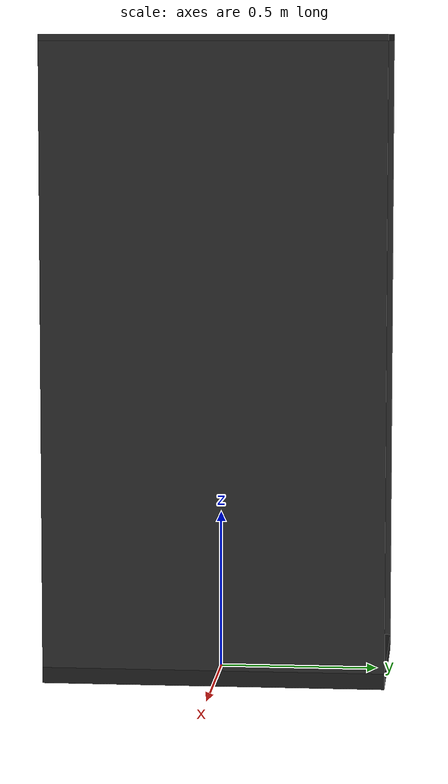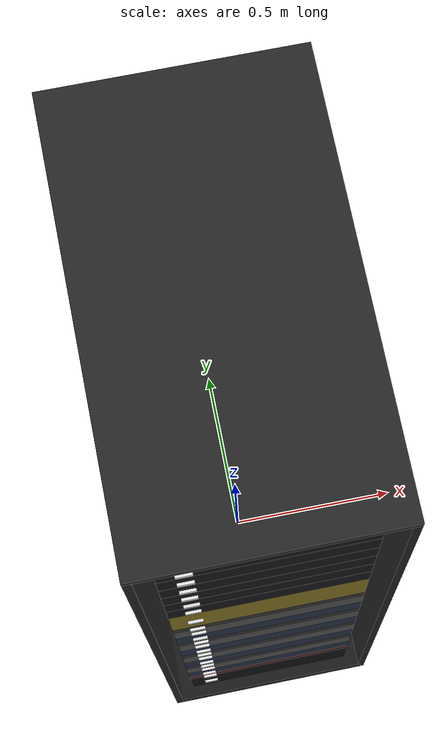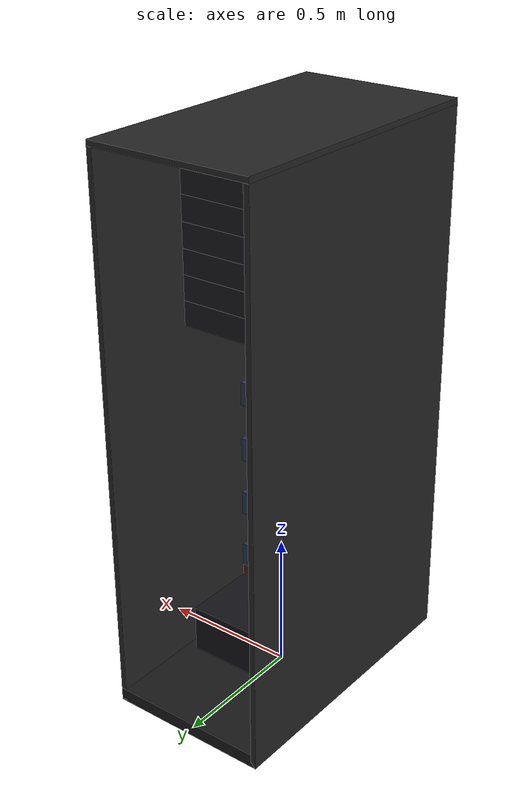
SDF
<?xml version="1.0"?>
<sdf version="1.9">
  <model name="server_rack_5">
    <static>true</static>

    <!-- ===================== FRAME ===================== -->

    <link name="frame_side_left">
      <pose>-0.29 0 1.0 0 0 0</pose>
      <collision name="collision">
        <geometry><box><size>0.02 1.07 2.0</size></box></geometry>
      </collision>
      <visual name="visual">
        <geometry><box><size>0.02 1.07 2.0</size></box></geometry>
        <material>
          <ambient>0.15 0.15 0.15 1</ambient>
          <diffuse>0.15 0.15 0.15 1</diffuse>
        </material>
      </visual>
    </link>

    <link name="frame_side_right">
      <pose>0.29 0 1.0 0 0 0</pose>
      <collision name="collision">
        <geometry><box><size>0.02 1.07 2.0</size></box></geometry>
      </collision>
      <visual name="visual">
        <geometry><box><size>0.02 1.07 2.0</size></box></geometry>
        <material>
          <ambient>0.15 0.15 0.15 1</ambient>
          <diffuse>0.15 0.15 0.15 1</diffuse>
        </material>
      </visual>
    </link>

    <link name="frame_top">
      <pose>0 0 2.01 0 0 0</pose>
      <collision name="collision">
        <geometry><box><size>0.60 1.07 0.02</size></box></geometry>
      </collision>
      <visual name="visual">
        <geometry><box><size>0.60 1.07 0.02</size></box></geometry>
        <material>
          <ambient>0.15 0.15 0.15 1</ambient>
          <diffuse>0.15 0.15 0.15 1</diffuse>
        </material>
      </visual>
    </link>

    <link name="frame_plinth">
      <pose>0 0 0.025 0 0 0</pose>
      <collision name="collision">
        <geometry><box><size>0.60 1.07 0.05</size></box></geometry>
      </collision>
      <visual name="visual">
        <geometry><box><size>0.60 1.07 0.05</size></box></geometry>
        <material>
          <ambient>0.10 0.10 0.10 1</ambient>
          <diffuse>0.10 0.10 0.10 1</diffuse>
        </material>
      </visual>
    </link>

    <!-- ===================== EQUIPMENT ===================== -->

    <!-- 4RU UPS, U1-U4 -->
    <link name="ups">
      <pose>0 -0.15 0.1389 0 0 0</pose>
      <collision name="collision">
        <geometry><box><size>0.483 0.70 0.1778</size></box></geometry>
      </collision>
      <visual name="visual">
        <geometry><box><size>0.483 0.70 0.1778</size></box></geometry>
        <material>
          <ambient>0.08 0.08 0.10 1</ambient>
          <diffuse>0.08 0.08 0.10 1</diffuse>
        </material>
      </visual>
    </link>

    <!-- 1RU PDU, U5 -->
    <link name="pdu">
      <pose>0 -0.29 0.2500 0 0 0</pose>
      <collision name="collision">
        <geometry><box><size>0.483 0.42 0.0444</size></box></geometry>
      </collision>
      <visual name="visual">
        <geometry><box><size>0.483 0.42 0.0444</size></box></geometry>
        <material>
          <ambient>0.30 0.10 0.10 1</ambient>
          <diffuse>0.30 0.10 0.10 1</diffuse>
        </material>
      </visual>
    </link>

    <!-- 2RU network switch 1, U6-U7 -->
    <link name="switch_1">
      <pose>0 -0.29 0.3167 0 0 0</pose>
      <collision name="collision">
        <geometry><box><size>0.483 0.42 0.0889</size></box></geometry>
      </collision>
      <visual name="visual">
        <geometry><box><size>0.483 0.42 0.0889</size></box></geometry>
        <material>
          <ambient>0.16 0.20 0.30 1</ambient>
          <diffuse>0.16 0.20 0.30 1</diffuse>
        </material>
      </visual>
    </link>

    <!-- 2RU patch panel 1, U8-U9 -->
    <link name="patch_panel_1">
      <pose>0 -0.425 0.4056 0 0 0</pose>
      <collision name="collision">
        <geometry><box><size>0.483 0.15 0.0889</size></box></geometry>
      </collision>
      <visual name="visual">
        <geometry><box><size>0.483 0.15 0.0889</size></box></geometry>
        <material>
          <ambient>0.35 0.35 0.35 1</ambient>
          <diffuse>0.35 0.35 0.35 1</diffuse>
        </material>
      </visual>
    </link>

    <!-- 1RU cable manager 1, U10 -->
    <link name="cable_manager_1">
      <pose>0 -0.425 0.4723 0 0 0</pose>
      <collision name="collision">
        <geometry><box><size>0.483 0.15 0.0444</size></box></geometry>
      </collision>
      <visual name="visual">
        <geometry><box><size>0.483 0.15 0.0444</size></box></geometry>
        <material>
          <ambient>0.22 0.22 0.22 1</ambient>
          <diffuse>0.22 0.22 0.22 1</diffuse>
        </material>
      </visual>
    </link>

    <!-- 2RU network switch 2, U11-U12 -->
    <link name="switch_2">
      <pose>0 -0.29 0.5390 0 0 0</pose>
      <collision name="collision">
        <geometry><box><size>0.483 0.42 0.0889</size></box></geometry>
      </collision>
      <visual name="visual">
        <geometry><box><size>0.483 0.42 0.0889</size></box></geometry>
        <material>
          <ambient>0.16 0.20 0.30 1</ambient>
          <diffuse>0.16 0.20 0.30 1</diffuse>
        </material>
      </visual>
    </link>

    <!-- 2RU patch panel 2, U13-U14 -->
    <link name="patch_panel_2">
      <pose>0 -0.425 0.6279 0 0 0</pose>
      <collision name="collision">
        <geometry><box><size>0.483 0.15 0.0889</size></box></geometry>
      </collision>
      <visual name="visual">
        <geometry><box><size>0.483 0.15 0.0889</size></box></geometry>
        <material>
          <ambient>0.35 0.35 0.35 1</ambient>
          <diffuse>0.35 0.35 0.35 1</diffuse>
        </material>
      </visual>
    </link>

    <!-- 1RU cable manager 2, U15 -->
    <link name="cable_manager_2">
      <pose>0 -0.425 0.6945 0 0 0</pose>
      <collision name="collision">
        <geometry><box><size>0.483 0.15 0.0444</size></box></geometry>
      </collision>
      <visual name="visual">
        <geometry><box><size>0.483 0.15 0.0444</size></box></geometry>
        <material>
          <ambient>0.22 0.22 0.22 1</ambient>
          <diffuse>0.22 0.22 0.22 1</diffuse>
        </material>
      </visual>
    </link>

    <!-- 2RU network switch 3, U16-U17 -->
    <link name="switch_3">
      <pose>0 -0.29 0.7612 0 0 0</pose>
      <collision name="collision">
        <geometry><box><size>0.483 0.42 0.0889</size></box></geometry>
      </collision>
      <visual name="visual">
        <geometry><box><size>0.483 0.42 0.0889</size></box></geometry>
        <material>
          <ambient>0.16 0.20 0.30 1</ambient>
          <diffuse>0.16 0.20 0.30 1</diffuse>
        </material>
      </visual>
    </link>

    <!-- 2RU patch panel 3, U18-U19 -->
    <link name="patch_panel_3">
      <pose>0 -0.425 0.8501 0 0 0</pose>
      <collision name="collision">
        <geometry><box><size>0.483 0.15 0.0889</size></box></geometry>
      </collision>
      <visual name="visual">
        <geometry><box><size>0.483 0.15 0.0889</size></box></geometry>
        <material>
          <ambient>0.35 0.35 0.35 1</ambient>
          <diffuse>0.35 0.35 0.35 1</diffuse>
        </material>
      </visual>
    </link>

    <!-- 1RU cable manager 3, U20 -->
    <link name="cable_manager_3">
      <pose>0 -0.425 0.9168 0 0 0</pose>
      <collision name="collision">
        <geometry><box><size>0.483 0.15 0.0444</size></box></geometry>
      </collision>
      <visual name="visual">
        <geometry><box><size>0.483 0.15 0.0444</size></box></geometry>
        <material>
          <ambient>0.22 0.22 0.22 1</ambient>
          <diffuse>0.22 0.22 0.22 1</diffuse>
        </material>
      </visual>
    </link>

    <!-- 2RU network switch 4, U21-U22 -->
    <link name="switch_4">
      <pose>0 -0.29 0.9835 0 0 0</pose>
      <collision name="collision">
        <geometry><box><size>0.483 0.42 0.0889</size></box></geometry>
      </collision>
      <visual name="visual">
        <geometry><box><size>0.483 0.42 0.0889</size></box></geometry>
        <material>
          <ambient>0.16 0.20 0.30 1</ambient>
          <diffuse>0.16 0.20 0.30 1</diffuse>
        </material>
      </visual>
    </link>

    <!-- 2RU patch panel 4, U23-U24 -->
    <link name="patch_panel_4">
      <pose>0 -0.425 1.0724 0 0 0</pose>
      <collision name="collision">
        <geometry><box><size>0.483 0.15 0.0889</size></box></geometry>
      </collision>
      <visual name="visual">
        <geometry><box><size>0.483 0.15 0.0889</size></box></geometry>
        <material>
          <ambient>0.35 0.35 0.35 1</ambient>
          <diffuse>0.35 0.35 0.35 1</diffuse>
        </material>
      </visual>
    </link>

    <!-- 1RU cable manager 4, U25 -->
    <link name="cable_manager_4">
      <pose>0 -0.425 1.1390 0 0 0</pose>
      <collision name="collision">
        <geometry><box><size>0.483 0.15 0.0444</size></box></geometry>
      </collision>
      <visual name="visual">
        <geometry><box><size>0.483 0.15 0.0444</size></box></geometry>
        <material>
          <ambient>0.22 0.22 0.22 1</ambient>
          <diffuse>0.22 0.22 0.22 1</diffuse>
        </material>
      </visual>
    </link>

    <!-- 4RU fiber patch panel, U26-U29 -->
    <link name="fiber_patch_panel">
      <pose>0 -0.35 1.2502 0 0 0</pose>
      <collision name="collision">
        <geometry><box><size>0.483 0.30 0.1778</size></box></geometry>
      </collision>
      <visual name="visual">
        <geometry><box><size>0.483 0.30 0.1778</size></box></geometry>
        <material>
          <ambient>0.55 0.48 0.15 1</ambient>
          <diffuse>0.55 0.48 0.15 1</diffuse>
        </material>
      </visual>
    </link>

    <!-- 2RU server 1, U30-U31 -->
    <link name="server_1">
      <pose>0 -0.15 1.3835 0 0 0</pose>
      <collision name="collision">
        <geometry><box><size>0.483 0.70 0.0889</size></box></geometry>
      </collision>
      <visual name="visual">
        <geometry><box><size>0.483 0.70 0.0889</size></box></geometry>
        <material>
          <ambient>0.10 0.10 0.12 1</ambient>
          <diffuse>0.10 0.10 0.12 1</diffuse>
        </material>
      </visual>
    </link>

    <!-- 2RU server 2, U32-U33 -->
    <link name="server_2">
      <pose>0 -0.15 1.4724 0 0 0</pose>
      <collision name="collision">
        <geometry><box><size>0.483 0.70 0.0889</size></box></geometry>
      </collision>
      <visual name="visual">
        <geometry><box><size>0.483 0.70 0.0889</size></box></geometry>
        <material>
          <ambient>0.10 0.10 0.12 1</ambient>
          <diffuse>0.10 0.10 0.12 1</diffuse>
        </material>
      </visual>
    </link>

    <!-- 2RU server 3, U34-U35 -->
    <link name="server_3">
      <pose>0 -0.15 1.5613 0 0 0</pose>
      <collision name="collision">
        <geometry><box><size>0.483 0.70 0.0889</size></box></geometry>
      </collision>
      <visual name="visual">
        <geometry><box><size>0.483 0.70 0.0889</size></box></geometry>
        <material>
          <ambient>0.10 0.10 0.12 1</ambient>
          <diffuse>0.10 0.10 0.12 1</diffuse>
        </material>
      </visual>
    </link>

    <!-- 2RU server 4, U36-U37 -->
    <link name="server_4">
      <pose>0 -0.15 1.6502 0 0 0</pose>
      <collision name="collision">
        <geometry><box><size>0.483 0.70 0.0889</size></box></geometry>
      </collision>
      <visual name="visual">
        <geometry><box><size>0.483 0.70 0.0889</size></box></geometry>
        <material>
          <ambient>0.10 0.10 0.12 1</ambient>
          <diffuse>0.10 0.10 0.12 1</diffuse>
        </material>
      </visual>
    </link>

    <!-- 2RU server 5, U38-U39 -->
    <link name="server_5">
      <pose>0 -0.15 1.7391 0 0 0</pose>
      <collision name="collision">
        <geometry><box><size>0.483 0.70 0.0889</size></box></geometry>
      </collision>
      <visual name="visual">
        <geometry><box><size>0.483 0.70 0.0889</size></box></geometry>
        <material>
          <ambient>0.10 0.10 0.12 1</ambient>
          <diffuse>0.10 0.10 0.12 1</diffuse>
        </material>
      </visual>
    </link>

    <!-- 2RU server 6, U40-U41 -->
    <link name="server_6">
      <pose>0 -0.15 1.8280 0 0 0</pose>
      <collision name="collision">
        <geometry><box><size>0.483 0.70 0.0889</size></box></geometry>
      </collision>
      <visual name="visual">
        <geometry><box><size>0.483 0.70 0.0889</size></box></geometry>
        <material>
          <ambient>0.10 0.10 0.12 1</ambient>
          <diffuse>0.10 0.10 0.12 1</diffuse>
        </material>
      </visual>
    </link>

    <!-- 1RU KVM console, U42 -->
    <link name="kvm">
      <pose>0 -0.29 1.8947 0 0 0</pose>
      <collision name="collision">
        <geometry><box><size>0.483 0.42 0.0444</size></box></geometry>
      </collision>
      <visual name="visual">
        <geometry><box><size>0.483 0.42 0.0444</size></box></geometry>
        <material>
          <ambient>0.12 0.25 0.18 1</ambient>
          <diffuse>0.12 0.25 0.18 1</diffuse>
        </material>
      </visual>
    </link>

    <!-- ===================== RFID TAGS =====================
         Local y = -0.503: 3 mm proud of the rack front plane (y = -0.50).
         Local z equals the tagged equipment's local z. -->

    <!-- ups, U1-4 -->
    <model name="barcode_label_031FB45">
      <static>true</static>
      <pose>-0.18 -0.5042 0.1389 0 0 0</pose>
      <link name="label_link">
        <visual name="substrate">
          <geometry><box><size>0.03810 0.00635 0.01270</size></box></geometry>
          <material>
            <ambient>0.9 0.9 0.9 1</ambient>
            <diffuse>0.9 0.9 0.9 1</diffuse>
          </material>
        </visual>
        <visual name="print">
          <pose>0 -0.00327 0 1.5708 0 0</pose>
          <geometry><box><size>0.03810 0.01270 0.0002</size></box></geometry>
          <material>
            <ambient>1 1 1 1</ambient>
            <diffuse>1 1 1 1</diffuse>
            <pbr><metal>
              <albedo_map>model://barcode_labels/materials/textures/031FB45.png</albedo_map>
              <metalness>0.0</metalness>
              <roughness>1.0</roughness>
            </metal></pbr>
          </material>
        </visual>
      </link>
    </model>

    <!-- pdu, U5-5 -->
    <model name="barcode_label_031FB46">
      <static>true</static>
      <pose>-0.18 -0.5042 0.2500 0 0 0</pose>
      <link name="label_link">
        <visual name="substrate">
          <geometry><box><size>0.03810 0.00635 0.01270</size></box></geometry>
          <material>
            <ambient>0.9 0.9 0.9 1</ambient>
            <diffuse>0.9 0.9 0.9 1</diffuse>
          </material>
        </visual>
        <visual name="print">
          <pose>0 -0.00327 0 1.5708 0 0</pose>
          <geometry><box><size>0.03810 0.01270 0.0002</size></box></geometry>
          <material>
            <ambient>1 1 1 1</ambient>
            <diffuse>1 1 1 1</diffuse>
            <pbr><metal>
              <albedo_map>model://barcode_labels/materials/textures/031FB46.png</albedo_map>
              <metalness>0.0</metalness>
              <roughness>1.0</roughness>
            </metal></pbr>
          </material>
        </visual>
      </link>
    </model>

    <!-- switch, U6-7 -->
    <model name="barcode_label_031FB47">
      <static>true</static>
      <pose>-0.18 -0.5042 0.3167 0 0 0</pose>
      <link name="label_link">
        <visual name="substrate">
          <geometry><box><size>0.03810 0.00635 0.01270</size></box></geometry>
          <material>
            <ambient>0.9 0.9 0.9 1</ambient>
            <diffuse>0.9 0.9 0.9 1</diffuse>
          </material>
        </visual>
        <visual name="print">
          <pose>0 -0.00327 0 1.5708 0 0</pose>
          <geometry><box><size>0.03810 0.01270 0.0002</size></box></geometry>
          <material>
            <ambient>1 1 1 1</ambient>
            <diffuse>1 1 1 1</diffuse>
            <pbr><metal>
              <albedo_map>model://barcode_labels/materials/textures/031FB47.png</albedo_map>
              <metalness>0.0</metalness>
              <roughness>1.0</roughness>
            </metal></pbr>
          </material>
        </visual>
      </link>
    </model>

    <!-- patch_panel, U8-9 -->
    <model name="barcode_label_031FB48">
      <static>true</static>
      <pose>-0.18 -0.5042 0.4056 0 0 0</pose>
      <link name="label_link">
        <visual name="substrate">
          <geometry><box><size>0.03810 0.00635 0.01270</size></box></geometry>
          <material>
            <ambient>0.9 0.9 0.9 1</ambient>
            <diffuse>0.9 0.9 0.9 1</diffuse>
          </material>
        </visual>
        <visual name="print">
          <pose>0 -0.00327 0 1.5708 0 0</pose>
          <geometry><box><size>0.03810 0.01270 0.0002</size></box></geometry>
          <material>
            <ambient>1 1 1 1</ambient>
            <diffuse>1 1 1 1</diffuse>
            <pbr><metal>
              <albedo_map>model://barcode_labels/materials/textures/031FB48.png</albedo_map>
              <metalness>0.0</metalness>
              <roughness>1.0</roughness>
            </metal></pbr>
          </material>
        </visual>
      </link>
    </model>

    <!-- cable_manager, U10-10 -->
    <model name="barcode_label_031FB49">
      <static>true</static>
      <pose>-0.18 -0.5042 0.4723 0 0 0</pose>
      <link name="label_link">
        <visual name="substrate">
          <geometry><box><size>0.03810 0.00635 0.01270</size></box></geometry>
          <material>
            <ambient>0.9 0.9 0.9 1</ambient>
            <diffuse>0.9 0.9 0.9 1</diffuse>
          </material>
        </visual>
        <visual name="print">
          <pose>0 -0.00327 0 1.5708 0 0</pose>
          <geometry><box><size>0.03810 0.01270 0.0002</size></box></geometry>
          <material>
            <ambient>1 1 1 1</ambient>
            <diffuse>1 1 1 1</diffuse>
            <pbr><metal>
              <albedo_map>model://barcode_labels/materials/textures/031FB49.png</albedo_map>
              <metalness>0.0</metalness>
              <roughness>1.0</roughness>
            </metal></pbr>
          </material>
        </visual>
      </link>
    </model>

    <!-- switch, U11-12 -->
    <model name="barcode_label_031FB4A">
      <static>true</static>
      <pose>-0.18 -0.5042 0.5390 0 0 0</pose>
      <link name="label_link">
        <visual name="substrate">
          <geometry><box><size>0.03810 0.00635 0.01270</size></box></geometry>
          <material>
            <ambient>0.9 0.9 0.9 1</ambient>
            <diffuse>0.9 0.9 0.9 1</diffuse>
          </material>
        </visual>
        <visual name="print">
          <pose>0 -0.00327 0 1.5708 0 0</pose>
          <geometry><box><size>0.03810 0.01270 0.0002</size></box></geometry>
          <material>
            <ambient>1 1 1 1</ambient>
            <diffuse>1 1 1 1</diffuse>
            <pbr><metal>
              <albedo_map>model://barcode_labels/materials/textures/031FB4A.png</albedo_map>
              <metalness>0.0</metalness>
              <roughness>1.0</roughness>
            </metal></pbr>
          </material>
        </visual>
      </link>
    </model>

    <!-- patch_panel, U13-14 -->
    <model name="barcode_label_031FB4B">
      <static>true</static>
      <pose>-0.18 -0.5042 0.6279 0 0 0</pose>
      <link name="label_link">
        <visual name="substrate">
          <geometry><box><size>0.03810 0.00635 0.01270</size></box></geometry>
          <material>
            <ambient>0.9 0.9 0.9 1</ambient>
            <diffuse>0.9 0.9 0.9 1</diffuse>
          </material>
        </visual>
        <visual name="print">
          <pose>0 -0.00327 0 1.5708 0 0</pose>
          <geometry><box><size>0.03810 0.01270 0.0002</size></box></geometry>
          <material>
            <ambient>1 1 1 1</ambient>
            <diffuse>1 1 1 1</diffuse>
            <pbr><metal>
              <albedo_map>model://barcode_labels/materials/textures/031FB4B.png</albedo_map>
              <metalness>0.0</metalness>
              <roughness>1.0</roughness>
            </metal></pbr>
          </material>
        </visual>
      </link>
    </model>

    <!-- cable_manager, U15-15 -->
    <model name="barcode_label_031FB4C">
      <static>true</static>
      <pose>-0.18 -0.5042 0.6945 0 0 0</pose>
      <link name="label_link">
        <visual name="substrate">
          <geometry><box><size>0.03810 0.00635 0.01270</size></box></geometry>
          <material>
            <ambient>0.9 0.9 0.9 1</ambient>
            <diffuse>0.9 0.9 0.9 1</diffuse>
          </material>
        </visual>
        <visual name="print">
          <pose>0 -0.00327 0 1.5708 0 0</pose>
          <geometry><box><size>0.03810 0.01270 0.0002</size></box></geometry>
          <material>
            <ambient>1 1 1 1</ambient>
            <diffuse>1 1 1 1</diffuse>
            <pbr><metal>
              <albedo_map>model://barcode_labels/materials/textures/031FB4C.png</albedo_map>
              <metalness>0.0</metalness>
              <roughness>1.0</roughness>
            </metal></pbr>
          </material>
        </visual>
      </link>
    </model>

    <!-- switch, U16-17 -->
    <model name="barcode_label_031FB4D">
      <static>true</static>
      <pose>-0.18 -0.5042 0.7612 0 0 0</pose>
      <link name="label_link">
        <visual name="substrate">
          <geometry><box><size>0.03810 0.00635 0.01270</size></box></geometry>
          <material>
            <ambient>0.9 0.9 0.9 1</ambient>
            <diffuse>0.9 0.9 0.9 1</diffuse>
          </material>
        </visual>
        <visual name="print">
          <pose>0 -0.00327 0 1.5708 0 0</pose>
          <geometry><box><size>0.03810 0.01270 0.0002</size></box></geometry>
          <material>
            <ambient>1 1 1 1</ambient>
            <diffuse>1 1 1 1</diffuse>
            <pbr><metal>
              <albedo_map>model://barcode_labels/materials/textures/031FB4D.png</albedo_map>
              <metalness>0.0</metalness>
              <roughness>1.0</roughness>
            </metal></pbr>
          </material>
        </visual>
      </link>
    </model>

    <!-- patch_panel, U18-19 -->
    <model name="barcode_label_031FB4E">
      <static>true</static>
      <pose>-0.18 -0.5042 0.8501 0 0 0</pose>
      <link name="label_link">
        <visual name="substrate">
          <geometry><box><size>0.03810 0.00635 0.01270</size></box></geometry>
          <material>
            <ambient>0.9 0.9 0.9 1</ambient>
            <diffuse>0.9 0.9 0.9 1</diffuse>
          </material>
        </visual>
        <visual name="print">
          <pose>0 -0.00327 0 1.5708 0 0</pose>
          <geometry><box><size>0.03810 0.01270 0.0002</size></box></geometry>
          <material>
            <ambient>1 1 1 1</ambient>
            <diffuse>1 1 1 1</diffuse>
            <pbr><metal>
              <albedo_map>model://barcode_labels/materials/textures/031FB4E.png</albedo_map>
              <metalness>0.0</metalness>
              <roughness>1.0</roughness>
            </metal></pbr>
          </material>
        </visual>
      </link>
    </model>

    <!-- cable_manager, U20-20 -->
    <model name="barcode_label_031FB4F">
      <static>true</static>
      <pose>-0.18 -0.5042 0.9168 0 0 0</pose>
      <link name="label_link">
        <visual name="substrate">
          <geometry><box><size>0.03810 0.00635 0.01270</size></box></geometry>
          <material>
            <ambient>0.9 0.9 0.9 1</ambient>
            <diffuse>0.9 0.9 0.9 1</diffuse>
          </material>
        </visual>
        <visual name="print">
          <pose>0 -0.00327 0 1.5708 0 0</pose>
          <geometry><box><size>0.03810 0.01270 0.0002</size></box></geometry>
          <material>
            <ambient>1 1 1 1</ambient>
            <diffuse>1 1 1 1</diffuse>
            <pbr><metal>
              <albedo_map>model://barcode_labels/materials/textures/031FB4F.png</albedo_map>
              <metalness>0.0</metalness>
              <roughness>1.0</roughness>
            </metal></pbr>
          </material>
        </visual>
      </link>
    </model>

    <!-- switch, U21-22 -->
    <model name="barcode_label_031FB50">
      <static>true</static>
      <pose>-0.18 -0.5042 0.9835 0 0 0</pose>
      <link name="label_link">
        <visual name="substrate">
          <geometry><box><size>0.03810 0.00635 0.01270</size></box></geometry>
          <material>
            <ambient>0.9 0.9 0.9 1</ambient>
            <diffuse>0.9 0.9 0.9 1</diffuse>
          </material>
        </visual>
        <visual name="print">
          <pose>0 -0.00327 0 1.5708 0 0</pose>
          <geometry><box><size>0.03810 0.01270 0.0002</size></box></geometry>
          <material>
            <ambient>1 1 1 1</ambient>
            <diffuse>1 1 1 1</diffuse>
            <pbr><metal>
              <albedo_map>model://barcode_labels/materials/textures/031FB50.png</albedo_map>
              <metalness>0.0</metalness>
              <roughness>1.0</roughness>
            </metal></pbr>
          </material>
        </visual>
      </link>
    </model>

    <!-- patch_panel, U23-24 -->
    <model name="barcode_label_031FB51">
      <static>true</static>
      <pose>-0.18 -0.5042 1.0724 0 0 0</pose>
      <link name="label_link">
        <visual name="substrate">
          <geometry><box><size>0.03810 0.00635 0.01270</size></box></geometry>
          <material>
            <ambient>0.9 0.9 0.9 1</ambient>
            <diffuse>0.9 0.9 0.9 1</diffuse>
          </material>
        </visual>
        <visual name="print">
          <pose>0 -0.00327 0 1.5708 0 0</pose>
          <geometry><box><size>0.03810 0.01270 0.0002</size></box></geometry>
          <material>
            <ambient>1 1 1 1</ambient>
            <diffuse>1 1 1 1</diffuse>
            <pbr><metal>
              <albedo_map>model://barcode_labels/materials/textures/031FB51.png</albedo_map>
              <metalness>0.0</metalness>
              <roughness>1.0</roughness>
            </metal></pbr>
          </material>
        </visual>
      </link>
    </model>

    <!-- cable_manager, U25-25 -->
    <model name="barcode_label_031FB52">
      <static>true</static>
      <pose>-0.18 -0.5042 1.1390 0 0 0</pose>
      <link name="label_link">
        <visual name="substrate">
          <geometry><box><size>0.03810 0.00635 0.01270</size></box></geometry>
          <material>
            <ambient>0.9 0.9 0.9 1</ambient>
            <diffuse>0.9 0.9 0.9 1</diffuse>
          </material>
        </visual>
        <visual name="print">
          <pose>0 -0.00327 0 1.5708 0 0</pose>
          <geometry><box><size>0.03810 0.01270 0.0002</size></box></geometry>
          <material>
            <ambient>1 1 1 1</ambient>
            <diffuse>1 1 1 1</diffuse>
            <pbr><metal>
              <albedo_map>model://barcode_labels/materials/textures/031FB52.png</albedo_map>
              <metalness>0.0</metalness>
              <roughness>1.0</roughness>
            </metal></pbr>
          </material>
        </visual>
      </link>
    </model>

    <!-- fiber_patch_panel, U26-29 -->
    <model name="barcode_label_031FB53">
      <static>true</static>
      <pose>-0.18 -0.5042 1.2502 0 0 0</pose>
      <link name="label_link">
        <visual name="substrate">
          <geometry><box><size>0.03810 0.00635 0.01270</size></box></geometry>
          <material>
            <ambient>0.9 0.9 0.9 1</ambient>
            <diffuse>0.9 0.9 0.9 1</diffuse>
          </material>
        </visual>
        <visual name="print">
          <pose>0 -0.00327 0 1.5708 0 0</pose>
          <geometry><box><size>0.03810 0.01270 0.0002</size></box></geometry>
          <material>
            <ambient>1 1 1 1</ambient>
            <diffuse>1 1 1 1</diffuse>
            <pbr><metal>
              <albedo_map>model://barcode_labels/materials/textures/031FB53.png</albedo_map>
              <metalness>0.0</metalness>
              <roughness>1.0</roughness>
            </metal></pbr>
          </material>
        </visual>
      </link>
    </model>

    <!-- server, U30-31 -->
    <model name="barcode_label_031FB54">
      <static>true</static>
      <pose>-0.18 -0.5042 1.3835 0 0 0</pose>
      <link name="label_link">
        <visual name="substrate">
          <geometry><box><size>0.03810 0.00635 0.01270</size></box></geometry>
          <material>
            <ambient>0.9 0.9 0.9 1</ambient>
            <diffuse>0.9 0.9 0.9 1</diffuse>
          </material>
        </visual>
        <visual name="print">
          <pose>0 -0.00327 0 1.5708 0 0</pose>
          <geometry><box><size>0.03810 0.01270 0.0002</size></box></geometry>
          <material>
            <ambient>1 1 1 1</ambient>
            <diffuse>1 1 1 1</diffuse>
            <pbr><metal>
              <albedo_map>model://barcode_labels/materials/textures/031FB54.png</albedo_map>
              <metalness>0.0</metalness>
              <roughness>1.0</roughness>
            </metal></pbr>
          </material>
        </visual>
      </link>
    </model>

    <!-- server, U32-33 -->
    <model name="barcode_label_031FB55">
      <static>true</static>
      <pose>-0.18 -0.5042 1.4724 0 0 0</pose>
      <link name="label_link">
        <visual name="substrate">
          <geometry><box><size>0.03810 0.00635 0.01270</size></box></geometry>
          <material>
            <ambient>0.9 0.9 0.9 1</ambient>
            <diffuse>0.9 0.9 0.9 1</diffuse>
          </material>
        </visual>
        <visual name="print">
          <pose>0 -0.00327 0 1.5708 0 0</pose>
          <geometry><box><size>0.03810 0.01270 0.0002</size></box></geometry>
          <material>
            <ambient>1 1 1 1</ambient>
            <diffuse>1 1 1 1</diffuse>
            <pbr><metal>
              <albedo_map>model://barcode_labels/materials/textures/031FB55.png</albedo_map>
              <metalness>0.0</metalness>
              <roughness>1.0</roughness>
            </metal></pbr>
          </material>
        </visual>
      </link>
    </model>

    <!-- server, U34-35 -->
    <model name="barcode_label_031FB56">
      <static>true</static>
      <pose>-0.18 -0.5042 1.5613 0 0 0</pose>
      <link name="label_link">
        <visual name="substrate">
          <geometry><box><size>0.03810 0.00635 0.01270</size></box></geometry>
          <material>
            <ambient>0.9 0.9 0.9 1</ambient>
            <diffuse>0.9 0.9 0.9 1</diffuse>
          </material>
        </visual>
        <visual name="print">
          <pose>0 -0.00327 0 1.5708 0 0</pose>
          <geometry><box><size>0.03810 0.01270 0.0002</size></box></geometry>
          <material>
            <ambient>1 1 1 1</ambient>
            <diffuse>1 1 1 1</diffuse>
            <pbr><metal>
              <albedo_map>model://barcode_labels/materials/textures/031FB56.png</albedo_map>
              <metalness>0.0</metalness>
              <roughness>1.0</roughness>
            </metal></pbr>
          </material>
        </visual>
      </link>
    </model>

    <!-- server, U36-37 -->
    <model name="barcode_label_031FB57">
      <static>true</static>
      <pose>-0.18 -0.5042 1.6502 0 0 0</pose>
      <link name="label_link">
        <visual name="substrate">
          <geometry><box><size>0.03810 0.00635 0.01270</size></box></geometry>
          <material>
            <ambient>0.9 0.9 0.9 1</ambient>
            <diffuse>0.9 0.9 0.9 1</diffuse>
          </material>
        </visual>
        <visual name="print">
          <pose>0 -0.00327 0 1.5708 0 0</pose>
          <geometry><box><size>0.03810 0.01270 0.0002</size></box></geometry>
          <material>
            <ambient>1 1 1 1</ambient>
            <diffuse>1 1 1 1</diffuse>
            <pbr><metal>
              <albedo_map>model://barcode_labels/materials/textures/031FB57.png</albedo_map>
              <metalness>0.0</metalness>
              <roughness>1.0</roughness>
            </metal></pbr>
          </material>
        </visual>
      </link>
    </model>

    <!-- server, U38-39 -->
    <model name="barcode_label_031FB58">
      <static>true</static>
      <pose>-0.18 -0.5042 1.7391 0 0 0</pose>
      <link name="label_link">
        <visual name="substrate">
          <geometry><box><size>0.03810 0.00635 0.01270</size></box></geometry>
          <material>
            <ambient>0.9 0.9 0.9 1</ambient>
            <diffuse>0.9 0.9 0.9 1</diffuse>
          </material>
        </visual>
        <visual name="print">
          <pose>0 -0.00327 0 1.5708 0 0</pose>
          <geometry><box><size>0.03810 0.01270 0.0002</size></box></geometry>
          <material>
            <ambient>1 1 1 1</ambient>
            <diffuse>1 1 1 1</diffuse>
            <pbr><metal>
              <albedo_map>model://barcode_labels/materials/textures/031FB58.png</albedo_map>
              <metalness>0.0</metalness>
              <roughness>1.0</roughness>
            </metal></pbr>
          </material>
        </visual>
      </link>
    </model>

    <!-- server, U40-41 -->
    <model name="barcode_label_031FB59">
      <static>true</static>
      <pose>-0.18 -0.5042 1.8280 0 0 0</pose>
      <link name="label_link">
        <visual name="substrate">
          <geometry><box><size>0.03810 0.00635 0.01270</size></box></geometry>
          <material>
            <ambient>0.9 0.9 0.9 1</ambient>
            <diffuse>0.9 0.9 0.9 1</diffuse>
          </material>
        </visual>
        <visual name="print">
          <pose>0 -0.00327 0 1.5708 0 0</pose>
          <geometry><box><size>0.03810 0.01270 0.0002</size></box></geometry>
          <material>
            <ambient>1 1 1 1</ambient>
            <diffuse>1 1 1 1</diffuse>
            <pbr><metal>
              <albedo_map>model://barcode_labels/materials/textures/031FB59.png</albedo_map>
              <metalness>0.0</metalness>
              <roughness>1.0</roughness>
            </metal></pbr>
          </material>
        </visual>
      </link>
    </model>

    <!-- kvm, U42-42 -->
    <model name="barcode_label_031FB5A">
      <static>true</static>
      <pose>-0.18 -0.5042 1.8947 0 0 0</pose>
      <link name="label_link">
        <visual name="substrate">
          <geometry><box><size>0.03810 0.00635 0.01270</size></box></geometry>
          <material>
            <ambient>0.9 0.9 0.9 1</ambient>
            <diffuse>0.9 0.9 0.9 1</diffuse>
          </material>
        </visual>
        <visual name="print">
          <pose>0 -0.00327 0 1.5708 0 0</pose>
          <geometry><box><size>0.03810 0.01270 0.0002</size></box></geometry>
          <material>
            <ambient>1 1 1 1</ambient>
            <diffuse>1 1 1 1</diffuse>
            <pbr><metal>
              <albedo_map>model://barcode_labels/materials/textures/031FB5A.png</albedo_map>
              <metalness>0.0</metalness>
              <roughness>1.0</roughness>
            </metal></pbr>
          </material>
        </visual>
      </link>
    </model>

  </model>
</sdf>
